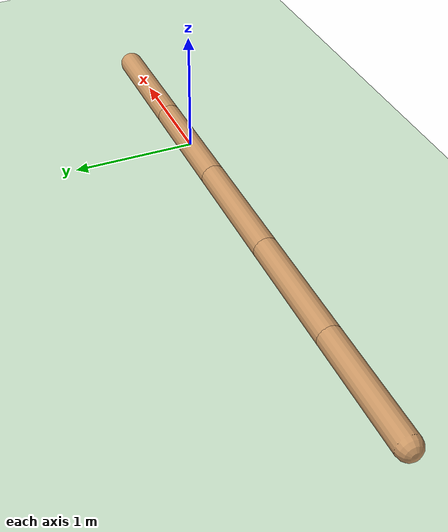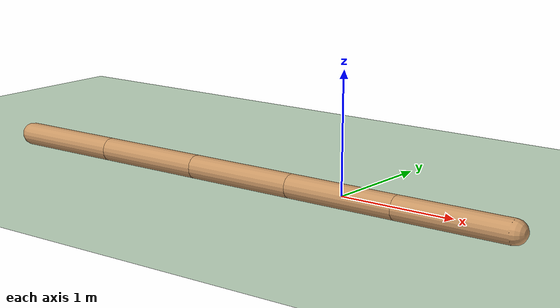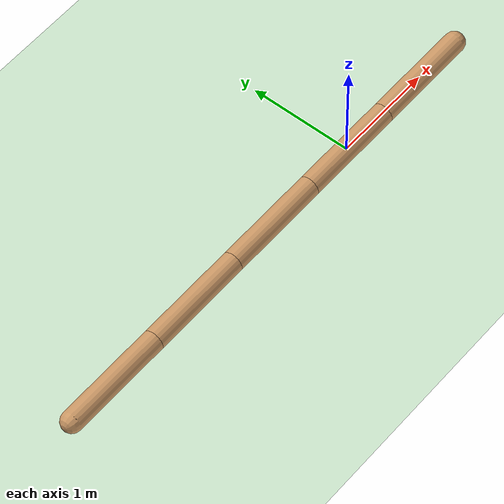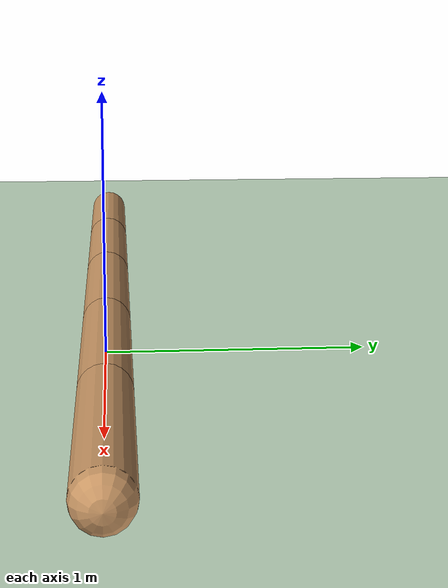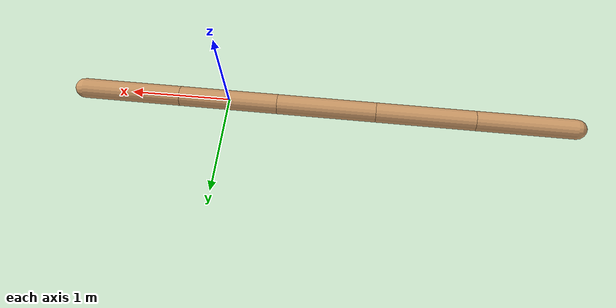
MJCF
<mujoco model="snake">
  <compiler inertiafromgeom="true" angle="degree" coordinate="local" />
  <custom>
    <numeric name="frame_skip" data="50" />
  </custom>
  <option timestep="0.001" density="4000" viscosity="0.1" collision="predefined" integrator="Euler" iterations="1000">
    <flag warmstart="disable" />
  </option>
  <default>
    <geom contype='1' conaffinity='1' condim='1' rgba='0.8 0.6 .4 1' material="geom" />
  </default>
  <asset>
    <texture type="skybox" builtin="gradient" width="100" height="100" rgb1="1 1 1" rgb2="0 0 0" />
    <texture name="texgeom" type="cube" builtin="flat" mark="cross" width="127" height="1278" rgb1="0.8 0.6 0.4" rgb2="0.8 0.6 0.4" markrgb="1 1 1" random="0.01" />
    <texture name="texplane" type="2d" builtin="checker" rgb1="1 1 1" rgb2="1 1 1" width="100" height="100" />
    <material name='MatPlane' texture="texplane" shininess="1" texrepeat="30 30" specular="1"  reflectance="0.0" />
    <material name='geom' texture="texgeom" texuniform="true" />
  </asset>
  <worldbody>
    <light directional="true" cutoff="100" exponent="1" diffuse="1 1 1" specular=".1 .1 .1" pos="0 0 1.3" dir="-0 0 -1.3" />
    <geom name='floor' material="MatPlane" pos='0 0 -0.1' size='50 50 0.1' type='plane' conaffinity='1' rgba='0.8 0.9 0.8 1' condim='3' />
    <!--  ================= SNAKE ================= /-->
    <body name="torso" pos="0 0 0">
      <camera euler="90 -90 0" fovy="60" name="rgb" pos="1.5 0 0.1" />
      <geom name="torso" type="capsule" fromto="1.5 0 0 0.5 0 0" size="0.1" density="1000" />
      <joint pos="0 0 0" type="slide" name="slider1" axis="1 0 0" />
      <joint pos="0 0 0" type="slide" name="slider2" axis="0 1 0" />
      <joint name="rot" type="hinge" pos="0 0 0" axis="0 0 1" />
      <body name="mid" pos="0.5 0 0">
        <geom name="mid" type="capsule" fromto="0 0 0 -1 0 0" size="0.1" density="1000" />
        <joint name="rot2" type="hinge" pos="0 0 0" axis="0 0 1" range="-100 100" limited="true" />
        <body name="back" pos="-1 0 0">
          <geom name="back" type="capsule" fromto="0 0 0 -1 0 0" size="0.1" density="1000" />
          <joint name="rot3" type="hinge" pos="0 0 0" axis="0 0 1" range="-100 100" limited="true" />
            <body name="back2" pos="-1 0 0">
                <geom name="back2" type="capsule" fromto="0 0 0 -1 0 0" size="0.1" density="1000" />
                <joint name="rot4" type="hinge" pos="0 0 0" axis="0 0 1" range="-100 100" limited="true" />
                <body name="back3" pos="-1 0 0">
                    <geom name="back3" type="capsule" fromto="0 0 0 -1 0 0" size="0.1" density="1000" />
                    <joint name="rot5" type="hinge" pos="0 0 0" axis="0 0 1" range="-100 100" limited="true" />
                </body>
            </body>
        </body>
      </body>
    </body>
  </worldbody>
  <actuator>
    <motor joint="rot2" ctrllimited="true" ctrlrange="-50 50" />
    <motor joint="rot3" ctrllimited="true" ctrlrange="-50 50" />
    <motor joint="rot4" ctrllimited="true" ctrlrange="-50 50" />
    <motor joint="rot5" ctrllimited="true" ctrlrange="-50 50" />
  </actuator>
</mujoco>
